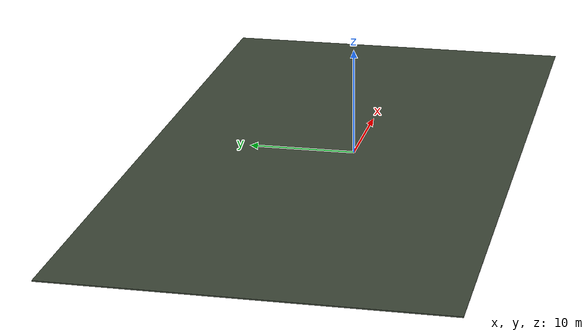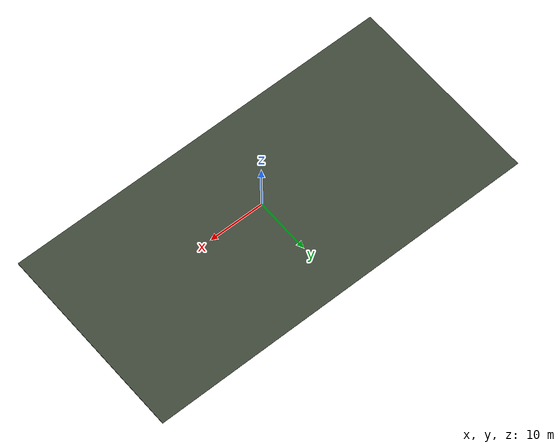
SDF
<sdf version="1.6">
 <world name="evrenos_teknofest_2026">
  <include><uri>model://sun</uri></include>
  <model name="main_course">
   <static>true</static>
   <link name="arena_floor">
    <pose>0 2 -0.08 0 0 0</pose>
    <collision name="arena_floor_collision">
     <geometry><box><size>70.0000 35.0000 0.1000</size></box></geometry>
    </collision>
    <visual name="arena_floor_visual">
     <geometry><box><size>70.0000 35.0000 0.1000</size></box></geometry>
     <material><ambient>0.24 0.28 0.22 1</ambient><diffuse>0.24 0.28 0.22 1</diffuse></material>
    </visual>
   </link>
  </model>
 </world>
</sdf>
